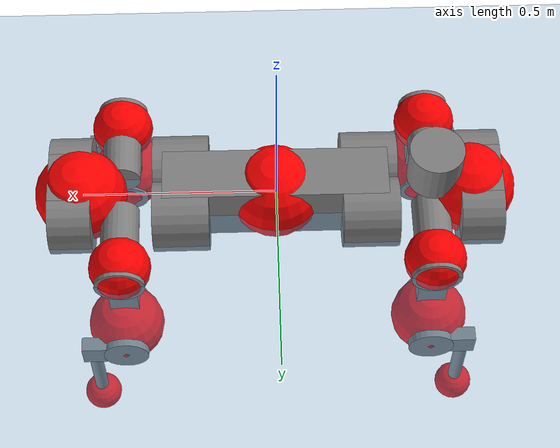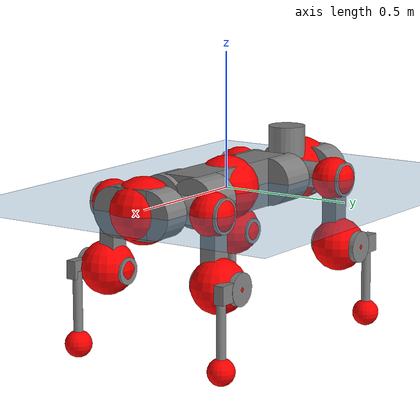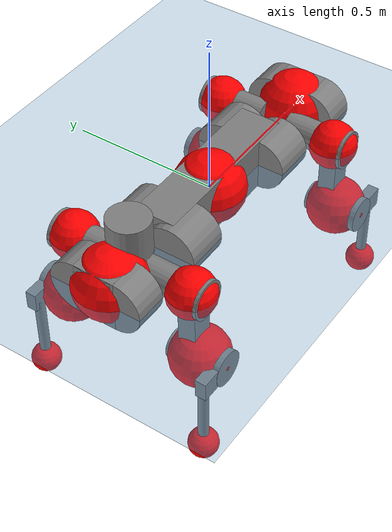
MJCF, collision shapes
<mujoco model="anymal_c">
  <compiler angle="radian" assetdir="assets" balanceinertia="true" inertiafromgeom="false"/>

  <option timestep="0.005" density="1.2" viscosity="2e-05"/>

  <size nkey="1"/>

  <visual>
    <quality shadowsize="8192"/>
    <map shadowclip="0.5"/>
  </visual>

  <default>
    <default class="/">
      <material specular="0" shininess="0.25"/>
      <geom contype="0" conaffinity="0" group="1" solref="-1000 -80"/>
      <site size="0.01 0.005 0.005" group="5"/>
      <general forcelimited="true" forcerange="-80 80" biastype="affine" gainprm="80" biasprm="0 -80 -2"/>
      <default class="anymal_c">
        <joint armature="0.01" damping="0.01" frictionloss="0.1"/>
        <default class="visual">
          <geom type="mesh" group="2"/>
          <default class="visual_zflip"/>
        </default>
        <default class="collision">
          <geom type="cylinder" group="3"/>
          <default class="foot">
            <geom size="0.03 0 0" type="sphere" condim="6" priority="1" friction="0.8 0.02 0.01" solimp="0.015 1 0.03"/>
          </default>
        </default>
      </default>
      <default class="reward_collision_sphere">
        <geom group="5" rgba="1 0 0 1"/>
      </default>
    </default>
  </default>

  <asset>
    <texture type="skybox" colorspace="auto" name="//unnamed_texture_0" builtin="gradient" rgb1="0.95 0.95 0.95" rgb2="0.95 0.95 0.95" width="100" height="600"/>
    <texture type="2d" colorspace="auto" name="texplane" builtin="checker" rgb1="0.345 0.575 0.748" rgb2="0.345 0.575 0.748" markrgb="1 1 1" width="512" height="512"/>
    <texture type="2d" colorspace="linear" name="base" file="base.png"/>
    <texture type="2d" colorspace="linear" name="top_shell" file="top_shell.png"/>
    <texture type="2d" colorspace="linear" name="bottom_shell" file="bottom_shell.png"/>
    <texture type="2d" colorspace="linear" name="remote" file="remote.png"/>
    <texture type="2d" colorspace="linear" name="hatch" file="hatch.png"/>
    <texture type="2d" colorspace="linear" name="handle" file="handle.png"/>
    <texture type="2d" colorspace="linear" name="face" file="face.png"/>
    <texture type="2d" colorspace="linear" name="battery" file="battery.png"/>
    <texture type="2d" colorspace="linear" name="lidar_cage" file="lidar_cage.png"/>
    <texture type="2d" colorspace="linear" name="depth_camera" file="depth_camera.png"/>
    <texture type="2d" colorspace="linear" name="wide_angle_camera" file="wide_angle_camera.png"/>
    <texture type="2d" colorspace="linear" name="lidar" file="lidar.png"/>
    <texture type="2d" colorspace="linear" name="drive" file="drive.png"/>
    <texture type="2d" colorspace="linear" name="hip_l" file="hip_l.png"/>
    <texture type="2d" colorspace="linear" name="shank_l" file="shank_l.png"/>
    <texture type="2d" colorspace="linear" name="foot" file="foot.png"/>
    <texture type="2d" colorspace="linear" name="thigh" file="thigh.png"/>
    <texture type="2d" colorspace="linear" name="shank_r" file="shank_r.png"/>
    <texture type="2d" colorspace="linear" name="hip_r" file="hip_r.png"/>
    <material name="MatPlane" class="/" texture="texplane" texuniform="true" texrepeat="2 2" specular="0.9" shininess="0.5"/>
    <material name="black_plastic" class="/" rgba="0.007 0.007 0.007 1"/>
    <material name="green" class="/" rgba="0.052 0.178 0.033 1"/>
    <material name="red" class="/" rgba="0.178 0.006 0.005 1"/>
    <material name="yellow" class="/" rgba="0.178 0.119 0.006 1"/>
    <material name="lwl" class="/" rgba="0.8 0.8 0.8 1"/>
    <material name="base" class="/" texture="base"/>
    <material name="top_shell" class="/" texture="top_shell"/>
    <material name="bottom_shell" class="/" texture="bottom_shell"/>
    <material name="hip_l" class="/" texture="hip_l"/>
    <material name="thigh" class="/" texture="thigh"/>
    <material name="shank_l" class="/" texture="shank_l"/>
    <material name="foot" class="/" texture="foot"/>
    <material name="hip_r" class="/" texture="hip_r"/>
    <material name="shank" class="/" texture="shank_r"/>
    <material name="hatch" class="/" texture="hatch"/>
    <material name="remote" class="/" texture="remote"/>
    <material name="handle" class="/" texture="handle"/>
    <material name="face" class="/" texture="face"/>
    <material name="depth_camera" class="/" texture="depth_camera"/>
    <material name="wide_angle_camera" class="/" texture="wide_angle_camera"/>
    <material name="battery" class="/" texture="battery"/>
    <material name="lidar_cage" class="/" texture="lidar_cage"/>
    <material name="lidar" class="/" texture="lidar"/>
    <material name="drive" class="/" texture="drive"/>
    <mesh name="base_0" class="/" file="base_0.obj"/>
    <mesh name="base_1" class="/" file="base_1.obj"/>
    <mesh name="base_2" class="/" file="base_2.obj"/>
    <mesh name="base_3" class="/" file="base_3.obj"/>
    <mesh name="base_4" class="/" file="base_4.obj"/>
    <mesh name="base_5" class="/" file="base_5.obj"/>
    <mesh name="top_shell" class="/" file="top_shell.obj"/>
    <mesh name="bottom_shell" class="/" file="bottom_shell.obj"/>
    <mesh name="remote" class="/" file="remote.obj"/>
    <mesh name="handle" class="/" file="handle.obj"/>
    <mesh name="face" class="/" file="face.obj"/>
    <mesh name="wide_angle_camera" class="/" file="wide_angle_camera.obj"/>
    <mesh name="depth_camera" class="/" file="depth_camera.obj"/>
    <mesh name="battery" class="/" file="battery.obj"/>
    <mesh name="lidar_cage" class="/" file="lidar_cage.obj"/>
    <mesh name="lidar" class="/" file="lidar.obj"/>
    <mesh name="drive" class="/" file="drive.obj"/>
    <mesh name="hip_l" class="/" file="hip_l.obj"/>
    <mesh name="thigh" class="/" file="thigh.obj"/>
    <mesh name="shank_l" class="/" file="shank_l.obj"/>
    <mesh name="foot" class="/" file="foot.obj"/>
    <mesh name="hip_r" class="/" file="hip_r.obj"/>
    <mesh name="hatch" class="/" file="hatch.obj"/>
    <mesh name="shank_r" class="/" file="shank_r.obj"/>
  </asset>

  <worldbody>
    <geom name="floor" class="/" size="100 100 0.125" type="plane" group="0" material="MatPlane"/>
    <light name="toplight_shadow" class="/" pos="0 0 5" dir="0.0990148 0.0990148 -0.990148" type="directional" ambient="0.04 0.04 0.04" diffuse="0.55 0.55 0.55" specular="0.12 0.12 0.12"/>
    <light name="toplight_fill" class="/" pos="0 0 5" dir="0.0990148 0.0990148 -0.990148" type="directional" castshadow="false" ambient="0.04 0.04 0.04" diffuse="0.3 0.3 0.3" specular="0.08 0.08 0.08"/>
    <body name="trunk" childclass="anymal_c" pos="0.00270293 0.000789779 0.000471958" quat="1 0.000286576 -0.000107621 -6.5521e-05">
      <inertial pos="0.00251659 0.00129856 0.0416684" quat="0.502153 0.493317 0.49835 0.506091" mass="19.1269" diaginertia="1.19695 0.669198 0.108689"/>
      <joint name="//unnamed_joint_0" type="free" armature="0" damping="0" frictionloss="0"/>
      <geom name="//unnamed_geom_1" class="visual" material="green" mesh="base_0"/>
      <geom name="//unnamed_geom_2" class="visual" material="yellow" mesh="base_1"/>
      <geom name="//unnamed_geom_3" class="visual" material="red" mesh="base_2"/>
      <geom name="//unnamed_geom_4" class="visual" material="black_plastic" mesh="base_3"/>
      <geom name="//unnamed_geom_5" class="visual" material="lwl" mesh="base_4"/>
      <geom name="//unnamed_geom_6" class="visual" material="base" mesh="base_5"/>
      <geom name="trunk_1" class="collision" size="0.28925 0.0698189 0.0897671" type="box"/>
      <geom name="trunk_2" class="collision" size="0.0897671 0.0723124" pos="0.243258 0.0701827 0" quat="0.707107 0 0.707107 0"/>
      <geom name="trunk_3" class="collision" size="0.0897671 0.0723124" pos="-0.243258 0.0701827 0" quat="0.707107 0 0.707107 0"/>
      <geom name="trunk_4" class="collision" size="0.0897671 0.0723124" pos="0.243258 -0.0701827 0" quat="0.707107 0 0.707107 0"/>
      <geom name="trunk_5" class="collision" size="0.0897671 0.0723124" pos="-0.243258 -0.0701827 0" quat="0.707107 0 0.707107 0"/>
      <geom name="//unnamed_geom_12" class="visual" material="top_shell" mesh="top_shell"/>
      <geom name="//unnamed_geom_13" class="visual" material="bottom_shell" mesh="bottom_shell"/>
      <geom name="//unnamed_geom_14" class="visual" material="remote" mesh="remote"/>
      <geom name="//unnamed_geom_15" class="visual" material="handle" mesh="handle"/>
      <geom name="//unnamed_geom_16" class="visual" pos="0.463588 0 0" quat="1 0 0 0" material="face" mesh="face"/>
      <geom name="trunk_6" class="collision" size="0.0548577 0.0698189 0.0897671" pos="0.525102 0 0" type="box"/>
      <geom name="//unnamed_geom_18" class="collision" size="0.0897671 0.0548577" pos="0.525102 0.0701827 0" quat="0.707107 0 0.707107 0"/>
      <geom name="//unnamed_geom_19" class="collision" size="0.0897671 0.0548577" pos="0.525102 -0.0701827 0" quat="0.707107 0 0.707107 0"/>
      <geom name="//unnamed_geom_20" class="visual" pos="0.516312 0 -0.0235601" quat="0.965926 0 0.258819 0" material="depth_camera" mesh="depth_camera"/>
      <geom name="//unnamed_geom_21" class="visual" pos="0.573753 0 0.0130418" material="wide_angle_camera" mesh="wide_angle_camera"/>
      <geom name="//unnamed_geom_22" class="visual_zflip" pos="-0.463588 0 0" quat="0 0 0 1" material="face" mesh="face"/>
      <geom name="trunk_7" class="collision" size="0.0548577 0.0698189 0.0897671" pos="-0.525102 0 0" quat="0 0 0 1" type="box"/>
      <geom name="//unnamed_geom_24" class="collision" size="0.0897671 0.0548577" pos="-0.525102 -0.0701827 0" quat="0 -0.707107 0 0.707107"/>
      <geom name="//unnamed_geom_25" class="collision" size="0.0897671 0.0548577" pos="-0.525102 0.0701827 0" quat="0 -0.707107 0 0.707107"/>
      <geom name="//unnamed_geom_26" class="visual" pos="-0.516312 0 -0.0235601" quat="0 -0.258819 0 0.965926" material="depth_camera" mesh="depth_camera"/>
      <geom name="//unnamed_geom_27" class="visual_zflip" pos="-0.573753 0 0.0130418" quat="0 0 0 1" material="wide_angle_camera" mesh="wide_angle_camera"/>
      <geom name="//unnamed_geom_28" class="visual" material="battery" mesh="battery"/>
      <geom name="//unnamed_geom_29" class="visual" pos="0 0.0751296 0.0271873" quat="0.683013 -0.183013 0.183013 0.683013" material="depth_camera" mesh="depth_camera"/>
      <geom name="//unnamed_geom_30" class="visual" pos="0 -0.0751296 0.0271873" quat="0.683013 0.183013 0.183013 -0.683013" material="depth_camera" mesh="depth_camera"/>
      <geom name="//unnamed_geom_31" class="visual" pos="-0.407108 0 0.0640331" quat="1 0 0 0" material="lidar_cage" mesh="lidar_cage"/>
      <geom name="trunk_8" class="collision" size="0.0698189 0.0598447" pos="-0.407108 0 0.116305"/>
      <geom name="//unnamed_geom_33" class="visual" pos="-0.407108 -4.55014e-05 0.123884" quat="0.707107 0 0 -0.707107" material="lidar" mesh="lidar"/>
      <geom name="//unnamed_geom_34" class="visual" pos="0.335416 0.104225 2.26687e-09" quat="0.258819 0.965926 0 0" material="drive" mesh="drive"/>
      <geom name="//unnamed_geom_35" class="visual" pos="0.335416 -0.104225 -2.26687e-09" quat="0.258819 -0.965926 0 0" material="drive" mesh="drive"/>
      <geom name="//unnamed_geom_36" class="visual" pos="-0.335416 0.104225 -2.26687e-09" quat="0 0 0.965926 -0.258819" material="drive" mesh="drive"/>
      <geom name="//unnamed_geom_37" class="visual" pos="-0.335416 -0.104225 2.26687e-09" quat="0 0 -0.965926 -0.258819" material="drive" mesh="drive"/>
      <geom name="//unnamed_geom_38" class="visual" pos="0.129738 0 0.0635975" quat="1 0 0 0" material="hatch" mesh="hatch"/>
      <geom name="//unnamed_geom_39" class="reward_collision_sphere" size="0.119689"/>
      <geom name="//unnamed_geom_40" class="reward_collision_sphere" size="0.119689" pos="0.503292 0 0"/>
      <geom name="//unnamed_geom_41" class="reward_collision_sphere" size="0.119689" pos="-0.503292 0 0"/>
      <site name="imu" pos="0.276555 0.0136419 0.0286704" size="0.00997412"/>
      <camera name="track" pos="0 -2.00522 0" quat="0.707107 0.707107 0 0" mode="trackcom"/>
      <camera name="ego_camera" pos="0.503292 0 -0.034848" quat="-0.5 -0.5 0.5 0.5"/>
      <body name="LF_HIP" pos="0.334436 0.104627 -0.00240366" quat="0.259411 0.965766 0.000835947 -0.000860567">
        <inertial pos="0.0609102 -0.015838 -0.00757295" quat="-0.128125 0.70992 -0.134894 0.679265" mass="2.78018" diaginertia="0.0103358 0.0048015 0.00166777"/>
        <joint name="LF_HAA" pos="0 0 0" axis="0.999952 0.00284053 -0.00942516" range="-0.707199 0.492049" armature="0.00884263" damping="0.00512012" frictionloss="0.107722"/>
        <geom name="//unnamed_geom_42" class="visual" pos="0 0.000133349 -2.19025e-05" quat="0.258819 -0.965926 0 0" material="hip_l" mesh="hip_l"/>
        <geom name="//unnamed_geom_43" class="visual" pos="0.0669938 -0.0796057 -0.0449884" quat="0.183013 -0.683013 0.683013 0.183013" material="drive" mesh="drive"/>
        <geom name="//unnamed_geom_44" class="collision" size="0.0498706 0.0698189" pos="0.0669938 -0.011991 -0.00601563" quat="-0.353553 -0.612372 0.612372 -0.353553"/>
        <body name="LF_THIGH" pos="0.0650197 -0.0736309 -0.0383807" quat="0.183283 -0.683307 0.682748 0.182631">
          <inertial pos="0.034601 -2.52638e-05 -0.216108" quat="0.993827 -0.00132712 -0.0785058 0.0783768" mass="3.03255" diaginertia="0.052973 0.0301513 0.00208032"/>
          <joint name="LF_HFE" pos="0 0 0" axis="0.999944 -0.00110045 -0.010482" range="-3.12769 3.14048" armature="0.0115052" damping="0" frictionloss="0.0890796"/>
          <geom name="//unnamed_geom_45" class="visual" pos="0.00230431 3.63105e-06 0" quat="0.707107 0 0 -0.707107" material="thigh" mesh="thigh"/>
          <geom name="//unnamed_geom_46" class="collision" size="0.0648318 0.0398965" pos="0.0447371 0 0" quat="0.5 0.5 -0.5 -0.5"/>
          <geom name="//unnamed_geom_47" class="collision" size="0.037403 0.0299224 0.140948" pos="0.0335528 0 -0.123113" quat="0.707107 0 0 -0.707107" type="box"/>
          <geom name="//unnamed_geom_48" class="visual" pos="0.112178 0 -0.248292" quat="1 0 0 0" material="drive" mesh="drive"/>
          <geom name="//unnamed_geom_49" class="collision" size="0.0498706 0.0698189" pos="0.0338884 0 -0.248292" quat="0.707107 0 0.707107 0"/>
          <geom name="//unnamed_geom_50" class="reward_collision_sphere" size="0.079793" pos="0.0279607 0 0"/>
          <body name="LF_SHANK" pos="0.111994 -0.00232177 -0.247854" quat="0.999999 -0.000515578 -0.000641502 0.000967551">
            <inertial pos="0.00766362 -0.060645 -0.0700092" quat="0.992609 -0.120291 0.00486751 -0.0152688" mass="0.617978" diaginertia="0.0176604 0.00963306 0.000557611"/>
            <joint name="LF_KFE" pos="0 0 0" axis="1 6.79574e-05 -0.000326642" range="-3.13263 3.1608" armature="0.0103107" damping="0" frictionloss="0.0958126"/>
            <geom name="//unnamed_geom_51" class="visual" pos="0.000751384 0.00400642 0" quat="0.707107 0 0 -0.707107" material="shank_l" mesh="shank_l"/>
            <geom name="LF_kfe_act" class="collision" size="0.0598447 0.0199482" pos="0.0223686 0 0" quat="0.5 0.5 -0.5 -0.5"/>
            <geom name="//unnamed_geom_53" class="collision" size="0.0573502 0.0336627 0.0189508" pos="0.0223686 -0.0576491 0" quat="0.5 0.5 -0.5 -0.5" type="box"/>
            <geom name="//unnamed_geom_54" class="visual" pos="0.0145953 -0.0868885 -0.294439" quat="0.382683 0 0 -0.92388" material="foot" mesh="foot"/>
            <geom name="LF_calf" class="collision" size="0.0174547 0.140886" pos="0.0145955 -0.0881796 -0.14722" quat="0.707107 0 0 -0.707107"/>
            <geom name="LF_foot" class="foot" size="0.0327828" pos="0.0145955 -0.0881796 -0.274837" quat="0.707107 0 0 -0.707107"/>
            <geom name="//unnamed_geom_57" class="reward_collision_sphere" size="0.0997412" pos="-0.0559214 0 0"/>
            <geom name="//unnamed_geom_58" class="reward_collision_sphere" size="0.0498706" pos="0.0145955 -0.0881796 -0.274837"/>
            <site name="LF_foot" class="foot" pos="0.0145955 -0.0881796 -0.274837" quat="0.707107 0 0 -0.707107" size="0.00997412"/>
          </body>
        </body>
      </body>
      <body name="RF_HIP" pos="0.333511 -0.102646 -0.00179155" quat="0.259141 -0.965839 0.000388892 0.000320707">
        <inertial pos="0.0657255 0.015731 -0.009848" quat="0.135775 0.677898 0.116693 0.713024" mass="2.80433" diaginertia="0.0105939 0.00497225 0.00169936"/>
        <joint name="RF_HAA" pos="0 0 0" axis="0.999885 0.0111222 0.0103016" range="-0.54349 0.700939" armature="0.00979542" damping="0.0042548" frictionloss="0.0857367"/>
        <geom name="//unnamed_geom_59" class="visual" pos="0 -0.000133348 -2.19025e-05" quat="0.258819 0.965926 0 0" material="hip_r" mesh="hip_r"/>
        <geom name="//unnamed_geom_60" class="visual" pos="0.0669938 0.0796057 -0.0449884" quat="0.183013 0.683013 0.683013 -0.183013" material="drive" mesh="drive"/>
        <geom name="//unnamed_geom_61" class="collision" size="0.0498706 0.0698189" pos="0.0669938 0.011991 -0.00601563" quat="-0.353553 0.612372 0.612372 0.353553"/>
        <body name="RF_THIGH" pos="0.0673797 0.0716069 -0.0351893" quat="0.182694 0.682699 0.683361 -0.183203">
          <inertial pos="0.0328151 0.00170125 -0.214094" quat="0.992908 -0.00521872 -0.0796202 0.0881339" mass="3.05124" diaginertia="0.0534954 0.0299578 0.0021079"/>
          <joint name="RF_HFE" pos="0 0 0" axis="0.999975 0.00102642 0.00703547" stiffness="0.0069251" range="-3.12092 3.17394" armature="0.0101228" damping="0" frictionloss="0.0949352"/>
          <geom name="//unnamed_geom_62" class="visual" pos="0.00230431 3.63105e-06 0" quat="0.707107 0 0 -0.707107" material="thigh" mesh="thigh"/>
          <geom name="//unnamed_geom_63" class="collision" size="0.0648318 0.0398965" pos="0.0447371 0 0" quat="0.5 0.5 0.5 0.5"/>
          <geom name="//unnamed_geom_64" class="collision" size="0.037403 0.0299224 0.140948" pos="0.0335528 0 -0.123113" quat="0.707107 0 0 0.707107" type="box"/>
          <geom name="//unnamed_geom_65" class="visual" pos="0.112178 0 -0.248292" quat="1 0 0 0" material="drive" mesh="drive"/>
          <geom name="//unnamed_geom_66" class="collision" size="0.0498706 0.0698189" pos="0.0338884 0 -0.248292" quat="0.707107 0 0.707107 0"/>
          <geom name="//unnamed_geom_67" class="reward_collision_sphere" size="0.079793" pos="0.0279607 0 0"/>
          <body name="RF_SHANK" pos="0.113104 -2.94693e-05 -0.244749" quat="0.999999 7.39933e-05 0.00105279 0.000332168">
            <inertial pos="0.00790255 0.0589246 -0.0672984" quat="0.992411 0.120386 0.00126005 0.025034" mass="0.570924" diaginertia="0.0184235 0.00981455 0.000584885"/>
            <joint name="RF_KFE" pos="0 0 0" axis="0.999954 0.00926134 -0.00257212" stiffness="0.00712853" range="-3.18738 3.1453" armature="0.00942292" damping="0.0207783" frictionloss="0.113395"/>
            <geom name="//unnamed_geom_68" class="visual" pos="0.00075138 -0.00400641 0" quat="0.707107 0 0 0.707107" material="shank" mesh="shank_r"/>
            <geom name="RF_kfe_act" class="collision" size="0.0598447 0.0199482" pos="0.0223686 0 0" quat="0.5 0.5 0.5 0.5"/>
            <geom name="//unnamed_geom_70" class="collision" size="0.0573502 0.0336627 0.0189508" pos="0.0223686 0.0576491 0" quat="0.5 0.5 0.5 0.5" type="box"/>
            <geom name="//unnamed_geom_71" class="visual" pos="0.0145957 0.0868885 -0.294439" quat="0.382683 0 0 0.92388" material="foot" mesh="foot"/>
            <geom name="RF_calf" class="collision" size="0.0174547 0.140886" pos="0.0145955 0.0881796 -0.14722" quat="0.707107 0 0 0.707107"/>
            <geom name="RF_foot" class="foot" size="0.0301511" pos="0.0145955 0.0881796 -0.274837" quat="0.707107 0 0 0.707107"/>
            <geom name="//unnamed_geom_74" class="reward_collision_sphere" size="0.0997412" pos="-0.0559214 0 0"/>
            <geom name="//unnamed_geom_75" class="reward_collision_sphere" size="0.0498706" pos="0.0145955 0.0881796 -0.274837"/>
            <site name="RF_foot" class="foot" pos="0.0145955 0.0881796 -0.274837" quat="0.707107 0 0 0.707107" size="0.00997412"/>
          </body>
        </body>
      </body>
      <body name="LH_HIP" pos="-0.333442 0.101698 0.000257637" quat="0.000131771 0.000109282 0.965877 -0.259">
        <inertial pos="0.0659466 0.0133674 -0.00739848" quat="0.143828 0.674727 0.118925 0.714083" mass="2.70147" diaginertia="0.0102955 0.00496449 0.0015923"/>
        <joint name="LH_HAA" pos="0 0 0" axis="0.999957 0.00614569 0.00697781" range="-0.441882 0.740573" armature="0.0100302" damping="0.00977267" frictionloss="0.0980424"/>
        <geom name="//unnamed_geom_76" class="visual" pos="0 -0.000133348 -2.19025e-05" quat="-0.258819 -0.965926 0 0" material="hip_r" mesh="hip_r"/>
        <geom name="//unnamed_geom_77" class="visual" pos="0.0669938 0.0796057 -0.0449884" quat="0.183013 0.683013 0.683013 -0.183013" material="drive" mesh="drive"/>
        <geom name="//unnamed_geom_78" class="collision" size="0.0498706 0.0698189" pos="0.0669938 0.011991 -0.00601563" quat="-0.353553 0.612372 0.612372 0.353553"/>
        <body name="LH_THIGH" pos="0.0681102 0.0739265 -0.0356672" quat="0.183547 0.682852 0.68297 -0.183237">
          <inertial pos="0.0336911 0.00227015 -0.214218" quat="0.991066 -0.0031151 -0.0919034 0.0966063" mass="3.11586" diaginertia="0.0529462 0.0311978 0.00211624"/>
          <joint name="LH_HFE" pos="0 0 0" axis="0.999906 -0.00498412 0.0127728" range="-3.08971 3.18815" armature="0.0112382" damping="0.0108257" frictionloss="0.113746"/>
          <geom name="//unnamed_geom_79" class="visual" pos="0.00230431 3.63105e-06 0" quat="0.707107 0 0 -0.707107" material="thigh" mesh="thigh"/>
          <geom name="//unnamed_geom_80" class="collision" size="0.0648318 0.0398965" pos="0.0447371 0 0" quat="0.5 0.5 -0.5 -0.5"/>
          <geom name="//unnamed_geom_81" class="collision" size="0.037403 0.0299224 0.140948" pos="0.0335528 0 -0.123113" quat="0.707107 0 0 -0.707107" type="box"/>
          <geom name="//unnamed_geom_82" class="visual" pos="0.112178 0 -0.248292" quat="1 0 0 0" material="drive" mesh="drive"/>
          <geom name="//unnamed_geom_83" class="collision" size="0.0498706 0.0698189" pos="0.0338884 0 -0.248292" quat="0.707107 0 0.707107 0"/>
          <geom name="//unnamed_geom_84" class="reward_collision_sphere" size="0.079793" pos="0.0279607 0 0"/>
          <body name="LH_SHANK" pos="0.109969 0.00220445 -0.250603" quat="0.999999 -0.000975216 -3.18983e-05 0.00048532">
            <inertial pos="0.00527495 0.0612138 -0.0685497" quat="0.993096 0.113551 -0.0104284 0.0275367" mass="0.566458" diaginertia="0.0177447 0.00923066 0.00056643"/>
            <joint name="LH_KFE" pos="0 0 0" axis="1 -0.000290413 0.00078903" range="-3.15947 3.09103" armature="0.00962969" damping="0.0114834" frictionloss="0.0857499"/>
            <geom name="//unnamed_geom_85" class="visual" pos="0.00075138 -0.00400641 0" quat="-0.707107 0 0 -0.707107" material="shank" mesh="shank_r"/>
            <geom name="LH_kfe_act" class="collision" size="0.0598447 0.0199482" pos="0.0223686 0 0" quat="0.5 0.5 -0.5 -0.5"/>
            <geom name="//unnamed_geom_87" class="collision" size="0.0573502 0.0336627 0.0189508" pos="0.0223686 0.0576491 0" quat="0.5 0.5 -0.5 -0.5" type="box"/>
            <geom name="//unnamed_geom_88" class="visual" pos="0.0145957 0.0868885 -0.294439" quat="-0.382683 0 0 -0.92388" material="foot" mesh="foot"/>
            <geom name="LH_calf" class="collision" size="0.0174547 0.140886" pos="0.0145955 0.0881796 -0.14722" quat="0.707107 0 0 -0.707107"/>
            <geom name="LH_foot" class="foot" size="0.0273537" pos="0.0145955 0.0881796 -0.274837" quat="0.707107 0 0 -0.707107"/>
            <geom name="//unnamed_geom_91" class="reward_collision_sphere" size="0.0997412" pos="-0.0559214 0 0"/>
            <geom name="//unnamed_geom_92" class="reward_collision_sphere" size="0.0498706" pos="0.0145955 0.0881796 -0.274837"/>
            <site name="LH_foot" class="foot" pos="0.0145955 0.0881796 -0.274837" quat="0.707107 0 0 -0.707107" size="0.00997412"/>
          </body>
        </body>
      </body>
      <body name="RH_HIP" pos="-0.337646 -0.104083 0.000324954" quat="-9.33742e-05 -0.000161163 -0.965898 -0.258923">
        <inertial pos="0.0661139 -0.0135952 -0.00774779" quat="-0.135897 0.703231 -0.139402 0.683788" mass="2.8006" diaginertia="0.0106599 0.00520484 0.00172245"/>
        <joint name="RH_HAA" pos="0 0 0" axis="0.999932 0.00136313 -0.011607" range="-0.728003 0.498955" armature="0.00971275" damping="0.0191996" frictionloss="0.102296"/>
        <geom name="//unnamed_geom_93" class="visual" pos="0 0.000133349 -2.19025e-05" quat="-0.258819 0.965926 0 0" material="hip_l" mesh="hip_l"/>
        <geom name="//unnamed_geom_94" class="visual" pos="0.0669938 -0.0796057 -0.0449884" quat="-0.183013 0.683013 -0.683013 -0.183013" material="drive" mesh="drive"/>
        <geom name="//unnamed_geom_95" class="collision" size="0.0498706 0.0698189" pos="0.0669938 -0.011991 -0.00601563" quat="0.353553 0.612372 -0.612372 0.353553"/>
        <body name="RH_THIGH" pos="0.0655818 -0.0733001 -0.0339694" quat="-0.183121 0.683172 -0.682844 -0.182939">
          <inertial pos="0.0343392 0.000682551 -0.213749" quat="0.993227 -0.00378591 -0.0870537 0.0768653" mass="3.08832" diaginertia="0.0531966 0.0315449 0.00216346"/>
          <joint name="RH_HFE" pos="0 0 0" axis="0.999984 -0.002399 -0.00508819" range="-3.12929 3.1582" armature="0.0112329" damping="0" frictionloss="0.0913717"/>
          <geom name="//unnamed_geom_96" class="visual" pos="0.00230431 3.63105e-06 0" quat="0.707107 0 0 -0.707107" material="thigh" mesh="thigh"/>
          <geom name="//unnamed_geom_97" class="collision" size="0.0648318 0.0398965" pos="0.0447371 0 0" quat="0.5 0.5 0.5 0.5"/>
          <geom name="//unnamed_geom_98" class="collision" size="0.037403 0.0299224 0.140948" pos="0.0335528 0 -0.123113" quat="0.707107 0 0 0.707107" type="box"/>
          <geom name="//unnamed_geom_99" class="visual" pos="0.112178 0 -0.248292" quat="1 0 0 0" material="drive" mesh="drive"/>
          <geom name="//unnamed_geom_100" class="collision" size="0.0498706 0.0698189" pos="0.0338884 0 -0.248292" quat="0.707107 0 0.707107 0"/>
          <geom name="//unnamed_geom_101" class="reward_collision_sphere" size="0.079793" pos="0.0279607 0 0"/>
          <body name="RH_SHANK" pos="0.112307 0.000252292 -0.248067" quat="1 -4.29014e-05 -0.000196731 0.000280368">
            <inertial pos="0.00345287 -0.0635337 -0.0678486" quat="0.992819 -0.117042 -0.000971886 -0.0247214" mass="0.610397" diaginertia="0.0173879 0.00978203 0.000565068"/>
            <joint name="RH_KFE" pos="0 0 0" axis="0.999999 -0.000222713 0.00116831" range="-3.12577 3.18578" armature="0.00996946" damping="0.00604608" frictionloss="0.111632"/>
            <geom name="//unnamed_geom_102" class="visual" pos="0.000751384 0.00400642 0" quat="0.707107 0 0 -0.707107" material="shank_l" mesh="shank_l"/>
            <geom name="RH_kfe_act" class="collision" size="0.0598447 0.0199482" pos="0.0223686 0 0" quat="0.5 0.5 0.5 0.5"/>
            <geom name="//unnamed_geom_104" class="collision" size="0.0573502 0.0336627 0.0189508" pos="0.0223686 -0.0576491 0" quat="0.5 0.5 0.5 0.5" type="box"/>
            <geom name="//unnamed_geom_105" class="visual" pos="0.0145953 -0.0868885 -0.294439" quat="0.382683 0 0 -0.92388" material="foot" mesh="foot"/>
            <geom name="RH_calf" class="collision" size="0.0174547 0.140886" pos="0.0145955 -0.0881796 -0.14722" quat="0.707107 0 0 0.707107"/>
            <geom name="RH_foot" class="foot" size="0.0312673" pos="0.0145955 -0.0881796 -0.274837" quat="0.707107 0 0 0.707107"/>
            <geom name="//unnamed_geom_108" class="reward_collision_sphere" size="0.0997412" pos="-0.0559214 0 0"/>
            <geom name="//unnamed_geom_109" class="reward_collision_sphere" size="0.0498706" pos="0.0145955 -0.0881796 -0.274837"/>
            <site name="RH_foot" class="foot" pos="0.0145955 -0.0881796 -0.274837" quat="0.707107 0 0 0.707107" size="0.00997412"/>
          </body>
        </body>
      </body>
    </body>
  </worldbody>

  <contact>
    <pair class="/" geom1="floor" geom2="LF_foot" name="//unnamed_contact_0"/>
    <pair class="/" geom1="floor" geom2="RF_foot" name="//unnamed_contact_1"/>
    <pair class="/" geom1="floor" geom2="LH_foot" name="//unnamed_contact_2"/>
    <pair class="/" geom1="floor" geom2="RH_foot" name="//unnamed_contact_3"/>
  </contact>

  <actuator>
    <general name="LF_HAA" class="/" joint="LF_HAA" forcerange="-80.3142 80.3142" gainprm="79.8377" biasprm="0 -79.8377 -2.06565"/>
    <general name="LF_HFE" class="/" joint="LF_HFE" forcerange="-71.5037 71.5037" gainprm="79.8377" biasprm="0 -79.8377 -2.06565"/>
    <general name="LF_KFE" class="/" joint="LF_KFE" forcerange="-84.0927 84.0927" gainprm="79.8377" biasprm="0 -79.8377 -2.06565"/>
    <general name="RF_HAA" class="/" joint="RF_HAA" forcerange="-80.5035 80.5035" gainprm="79.8377" biasprm="0 -79.8377 -2.06565"/>
    <general name="RF_HFE" class="/" joint="RF_HFE" forcerange="-77.5167 77.5167" gainprm="79.8377" biasprm="0 -79.8377 -2.06565"/>
    <general name="RF_KFE" class="/" joint="RF_KFE" forcerange="-86.9893 86.9893" gainprm="79.8377" biasprm="0 -79.8377 -2.06565"/>
    <general name="LH_HAA" class="/" joint="LH_HAA" forcerange="-79.5789 79.5789" gainprm="79.8377" biasprm="0 -79.8377 -2.06565"/>
    <general name="LH_HFE" class="/" joint="LH_HFE" forcerange="-87.7595 87.7595" gainprm="79.8377" biasprm="0 -79.8377 -2.06565"/>
    <general name="LH_KFE" class="/" joint="LH_KFE" forcerange="-75.2665 75.2665" gainprm="79.8377" biasprm="0 -79.8377 -2.06565"/>
    <general name="RH_HAA" class="/" joint="RH_HAA" forcerange="-79.8196 79.8196" gainprm="79.8377" biasprm="0 -79.8377 -2.06565"/>
    <general name="RH_HFE" class="/" joint="RH_HFE" forcerange="-81.0147 81.0147" gainprm="79.8377" biasprm="0 -79.8377 -2.06565"/>
    <general name="RH_KFE" class="/" joint="RH_KFE" forcerange="-73.8129 73.8129" gainprm="79.8377" biasprm="0 -79.8377 -2.06565"/>
  </actuator>

  <sensor>
    <gyro site="imu" name="imu_angular_velocity"/>
    <velocimeter site="imu" name="imu_linear_velocity"/>
    <framelinvel objtype="site" objname="LF_foot" name="LF_foot_global_linear_velocity"/>
    <framelinvel objtype="site" objname="RF_foot" name="RF_foot_global_linear_velocity"/>
    <framelinvel objtype="site" objname="LH_foot" name="LH_foot_global_linear_velocity"/>
    <framelinvel objtype="site" objname="RH_foot" name="RH_foot_global_linear_velocity"/>
  </sensor>

  <keyframe>
    <key name="home" qpos="0 0 0.55 1 0 0 0 0 0.4 -0.8 0 -0.4 0.8 0 -0.4 0.8 0 0.4 -0.8"/>
  </keyframe>
</mujoco>
